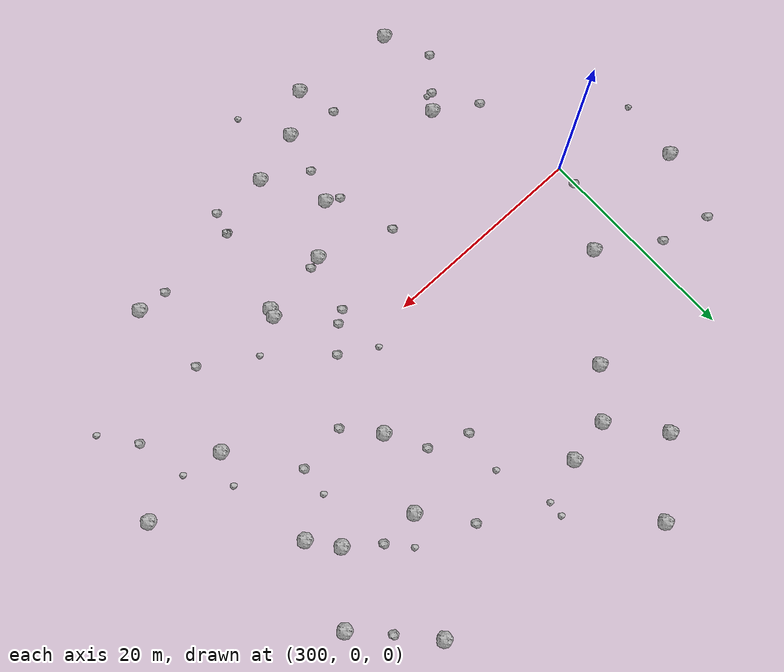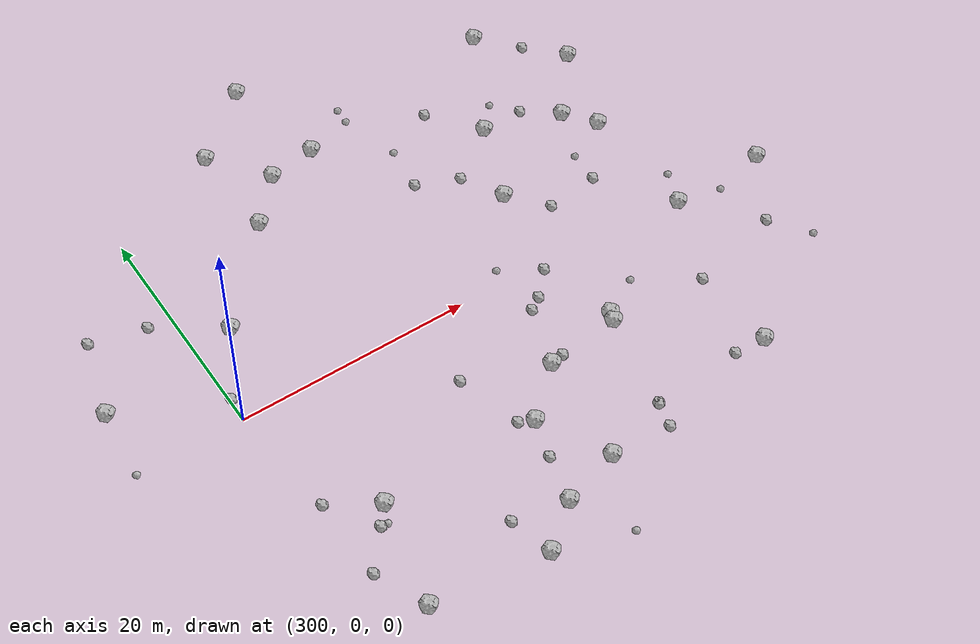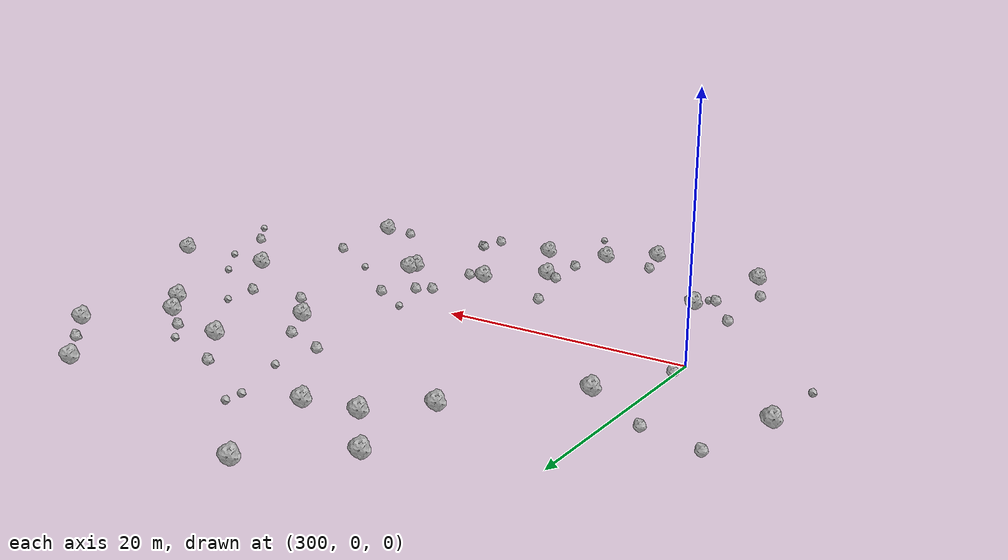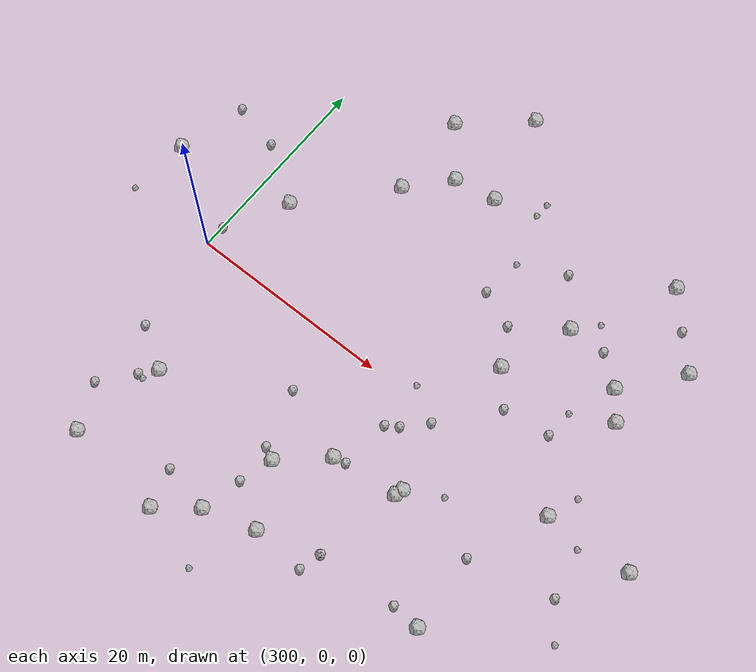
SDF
<sdf version="1.6">
 <world name="default">
  <include><uri>model://sun</uri></include>
  <model name="rock1_8_2">
   <include><uri>model://rock1</uri><pose>318.5628555340274 -12.480099972838964 0.5 0 0 0</pose></include>
  </model>
  <model name="rock1_8_3">
   <include><uri>model://rock1</uri><pose>342.88388505553377 17.59995666465698 0.5 0 0 0</pose></include>
  </model>
  <model name="rock1_8_4">
   <include><uri>model://rock1</uri><pose>322.66863771487397 -8.83384322440704 0.5 0 0 0</pose></include>
  </model>
  <model name="rock1_8_5">
   <include><uri>model://rock1</uri><pose>314.1631802002892 19.7682250837776 0.5 0 0 0</pose></include>
  </model>
  <model name="rock1_8_6">
   <include><uri>model://rock1</uri><pose>303.14264042649114 -21.34070766251555 0.5 0 0 0</pose></include>
  </model>
  <model name="rock1_8_7">
   <include><uri>model://rock1</uri><pose>321.6617830988292 -18.217715208716744 0.5 0 0 0</pose></include>
  </model>
  <model name="rock1_8_8">
   <include><uri>model://rock1</uri><pose>316.3275817836876 29.680242379638983 0.5 0 0 0</pose></include>
  </model>
  <model name="rock1_8_9">
   <include><uri>model://rock1</uri><pose>329.1472708223596 -8.06895074225492 0.5 0 0 0</pose></include>
  </model>
  <model name="rock1_8_10">
   <include><uri>model://rock1</uri><pose>338.01702652363736 -16.03980161955799 0.5 0 0 0</pose></include>
  </model>
  <model name="rock1_8_11">
   <include><uri>model://rock1</uri><pose>349.38435256784953 -0.7447941741183115 0.5 0 0 0</pose></include>
  </model>
  <model name="rock1_8_12">
   <include><uri>model://rock1</uri><pose>331.86881406220175 14.353442546970513 0.5 0 0 0</pose></include>
  </model>
  <model name="rock1_8_13">
   <include><uri>model://rock1</uri><pose>316.64439144300206 -19.716525295064145 0.5 0 0 0</pose></include>
  </model>
  <model name="rock1_8_14">
   <include><uri>model://rock1</uri><pose>318.36380540806863 20.467240650891156 0.5 0 0 0</pose></include>
  </model>
  <model name="rock1_8_15">
   <include><uri>model://rock1</uri><pose>303.4393363916308 7.925876112871052 0.5 0 0 0</pose></include>
  </model>
  <model name="rock1_8_16">
   <include><uri>model://rock1</uri><pose>291.44219152979906 6.026678638697163 0.5 0 0 0</pose></include>
  </model>
  <model name="rock1_8_17">
   <include><uri>model://rock1</uri><pose>338.4349975858825 12.200204200702458 0.5 0 0 0</pose></include>
  </model>
  <model name="rock1_8_18">
   <include><uri>model://rock1</uri><pose>305.0145234223227 -12.408899602197987 0.5 0 0 0</pose></include>
  </model>
  <model name="rock1_8_19">
   <include><uri>model://rock1</uri><pose>313.0082146155559 -22.540969090038104 0.5 0 0 0</pose></include>
  </model>
  <model name="rock1_8_20">
   <include><uri>model://rock1</uri><pose>340.41555738985625 9.640579666153478 0.5 0 0 0</pose></include>
  </model>
  <model name="rock1_8_21">
   <include><uri>model://rock1</uri><pose>340.8424394312726 -1.1342954771057912 0.5 0 0 0</pose></include>
  </model>
  <model name="rock1_8_22">
   <include><uri>model://rock1</uri><pose>337.11598264261613 23.834785117694906 0.5 0 0 0</pose></include>
  </model>
  <model name="rock1_8_23">
   <include><uri>model://rock1</uri><pose>310.4063510532729 24.506023583648144 0.5 0 0 0</pose></include>
  </model>
  <model name="rock1_8_24">
   <include><uri>model://rock1</uri><pose>310.6767327272717 15.92588487522908 0.5 0 0 0</pose></include>
  </model>
  <model name="rock1_8_25">
   <include><uri>model://rock1</uri><pose>329.15053913451544 7.383368122527031 0.5 0 0 0</pose></include>
  </model>
  <model name="rock1_8_26">
   <include><uri>model://rock1</uri><pose>329.3791503437571 -7.337042772648566 0.5 0 0 0</pose></include>
  </model>
  <model name="rock2_8_0">
   <include><uri>model://rock2</uri><pose>340.00785977602555 20.64666105052339 0.3 0 0 0</pose></include>
  </model>
  <model name="rock2_8_1">
   <include><uri>model://rock2</uri><pose>328.4699316995727 18.646385403277392 0.3 0 0 0</pose></include>
  </model>
  <model name="rock2_8_2">
   <include><uri>model://rock2</uri><pose>300.12752891575883 2.051960754120131 0.3 0 0 0</pose></include>
  </model>
  <model name="rock2_8_3">
   <include><uri>model://rock2</uri><pose>335.55331735962557 14.483607648952194 0.3 0 0 0</pose></include>
  </model>
  <model name="rock2_8_4">
   <include><uri>model://rock2</uri><pose>323.8407674517559 -8.532382481737809 0.3 0 0 0</pose></include>
  </model>
  <model name="rock2_8_5">
   <include><uri>model://rock2</uri><pose>331.7732284368522 4.345132785911694 0.3 0 0 0</pose></include>
  </model>
  <model name="rock2_8_6">
   <include><uri>model://rock2</uri><pose>317.56154347963167 -15.71075891140013 0.3 0 0 0</pose></include>
  </model>
  <model name="rock2_8_7">
   <include><uri>model://rock2</uri><pose>315.73931828525014 -6.223306929499383 0.3 0 0 0</pose></include>
  </model>
  <model name="rock2_8_8">
   <include><uri>model://rock2</uri><pose>297.9655947756536 11.638700081733532 0.3 0 0 0</pose></include>
  </model>
  <model name="rock2_8_9">
   <include><uri>model://rock2</uri><pose>301.0550215558005 -9.91904947738519 0.3 0 0 0</pose></include>
  </model>
  <model name="rock2_8_10">
   <include><uri>model://rock2</uri><pose>301.17333688219003 -16.925531339951334 0.3 0 0 0</pose></include>
  </model>
  <model name="rock2_8_11">
   <include><uri>model://rock2</uri><pose>293.26057500602633 12.813080838866874 0.3 0 0 0</pose></include>
  </model>
  <model name="rock2_8_12">
   <include><uri>model://rock2</uri><pose>336.40261802417666 4.937409219284177 0.3 0 0 0</pose></include>
  </model>
  <model name="rock2_8_13">
   <include><uri>model://rock2</uri><pose>317.3154724472233 -11.83226878032524 0.3 0 0 0</pose></include>
  </model>
  <model name="rock2_8_14">
   <include><uri>model://rock2</uri><pose>326.82358799406694 -18.486772696881587 0.3 0 0 0</pose></include>
  </model>
  <model name="rock2_8_15">
   <include><uri>model://rock2</uri><pose>335.22337859129414 -15.841988349138852 0.3 0 0 0</pose></include>
  </model>
  <model name="rock2_8_16">
   <include><uri>model://rock2</uri><pose>325.4699644150676 -2.8634347140086938 0.3 0 0 0</pose></include>
  </model>
  <model name="rock2_8_17">
   <include><uri>model://rock2</uri><pose>327.15276259725636 10.972650239110152 0.3 0 0 0</pose></include>
  </model>
  <model name="rock2_8_18">
   <include><uri>model://rock2</uri><pose>327.4573480972204 -0.7724961024823571 0.3 0 0 0</pose></include>
  </model>
  <model name="rock2_8_19">
   <include><uri>model://rock2</uri><pose>303.72019003568226 -13.855053668971639 0.3 0 0 0</pose></include>
  </model>
  <model name="rock2_8_20">
   <include><uri>model://rock2</uri><pose>311.97302818730986 -18.79684447317981 0.3 0 0 0</pose></include>
  </model>
  <model name="rock2_8_21">
   <include><uri>model://rock2</uri><pose>324.31677616103764 -3.611929075559921 0.3 0 0 0</pose></include>
  </model>
  <model name="rock2_8_22">
   <include><uri>model://rock2</uri><pose>337.5670808618947 -8.585324985313846 0.3 0 0 0</pose></include>
  </model>
  <model name="rock2_8_23">
   <include><uri>model://rock2</uri><pose>323.52809719384584 12.470189574788478 0.3 0 0 0</pose></include>
  </model>
  <model name="rock2_8_24">
   <include><uri>model://rock2</uri><pose>327.3495964018653 -16.35149000229726 0.3 0 0 0</pose></include>
  </model>
  <model name="rock2_8_25">
   <include><uri>model://rock2</uri><pose>327.42461874496746 -16.3212054544501 0.3 0 0 0</pose></include>
  </model>
  <model name="rock2_8_26">
   <include><uri>model://rock2</uri><pose>345.69055093497786 -6.605399574456108 0.3 0 0 0</pose></include>
  </model>
  <model name="rock3_8_0">
   <include><uri>model://rock3</uri><pose>324.00139639423446 16.463742382985778 0.2 0 0 0</pose></include>
  </model>
  <model name="rock3_8_1">
   <include><uri>model://rock3</uri><pose>319.20935096547356 -24.48392189689505 0.2 0 0 0</pose></include>
  </model>
  <model name="rock3_8_2">
   <include><uri>model://rock3</uri><pose>290.7971992633839 -0.0367000034173941 0.2 0 0 0</pose></include>
  </model>
  <model name="rock3_8_3">
   <include><uri>model://rock3</uri><pose>333.77957778814414 16.504439074589897 0.2 0 0 0</pose></include>
  </model>
  <model name="rock3_8_4">
   <include><uri>model://rock3</uri><pose>348.06521421630606 -9.829251065749652 0.2 0 0 0</pose></include>
  </model>
  <model name="rock3_8_5">
   <include><uri>model://rock3</uri><pose>344.62602593011854 -1.8945570316759692 0.2 0 0 0</pose></include>
  </model>
  <model name="rock3_8_6">
   <include><uri>model://rock3</uri><pose>336.5763877288499 7.712788347519563 0.2 0 0 0</pose></include>
  </model>
  <model name="rock3_8_7">
   <include><uri>model://rock3</uri><pose>324.17580289444777 1.20708661384435 0.2 0 0 0</pose></include>
  </model>
  <model name="rock3_8_8">
   <include><uri>model://rock3</uri><pose>332.6565566725608 -5.486599890742404 0.2 0 0 0</pose></include>
  </model>
  <model name="rock3_8_9">
   <include><uri>model://rock3</uri><pose>322.4466151395016 21.69724983550158 0.2 0 0 0</pose></include>
  </model>
  <model name="rock3_8_10">
   <include><uri>model://rock3</uri><pose>341.9403932295139 1.8242900143878025 0.2 0 0 0</pose></include>
  </model>
  <model name="rock3_8_11">
   <include><uri>model://rock3</uri><pose>322.53353198887777 23.178464155706386 0.2 0 0 0</pose></include>
  </model>
  <model name="rock3_8_12">
   <include><uri>model://rock3</uri><pose>304.2864964673763 -13.93401318222756 0.2 0 0 0</pose></include>
  </model>
 </world>
</sdf>
